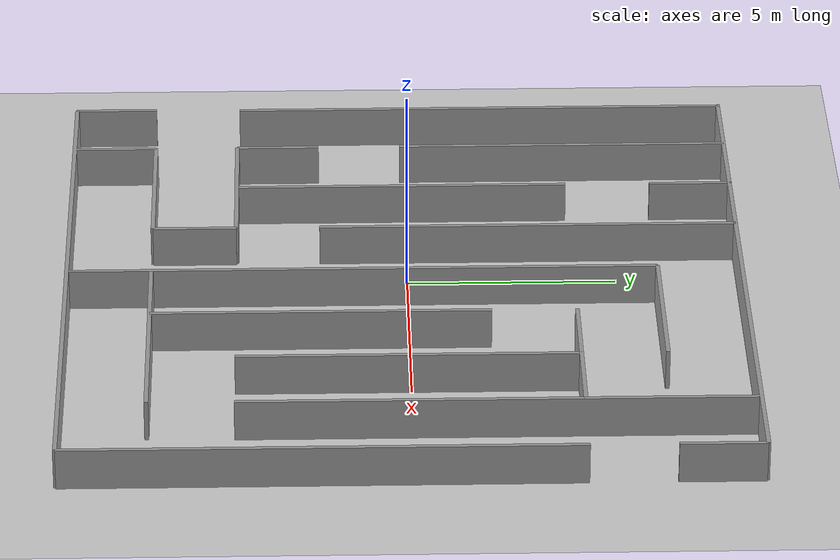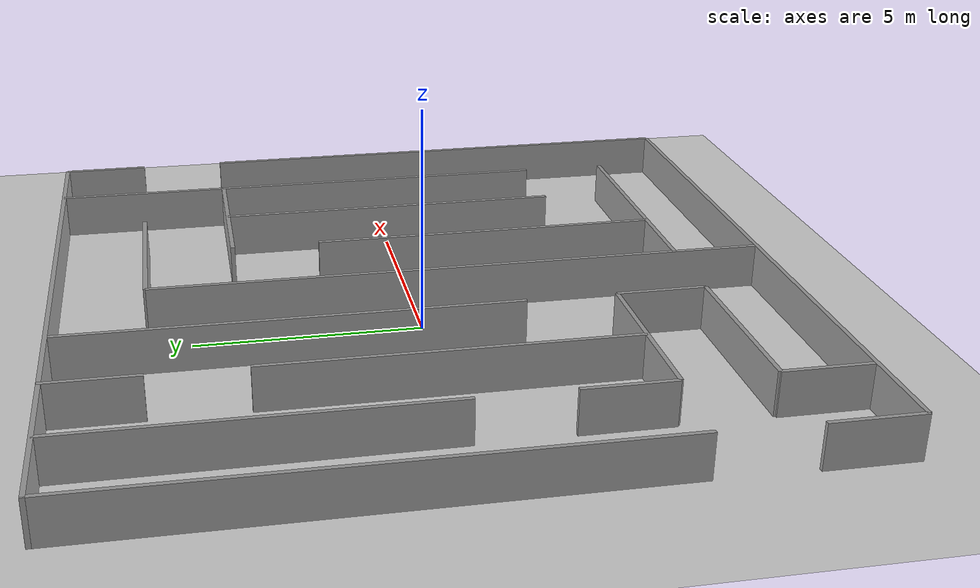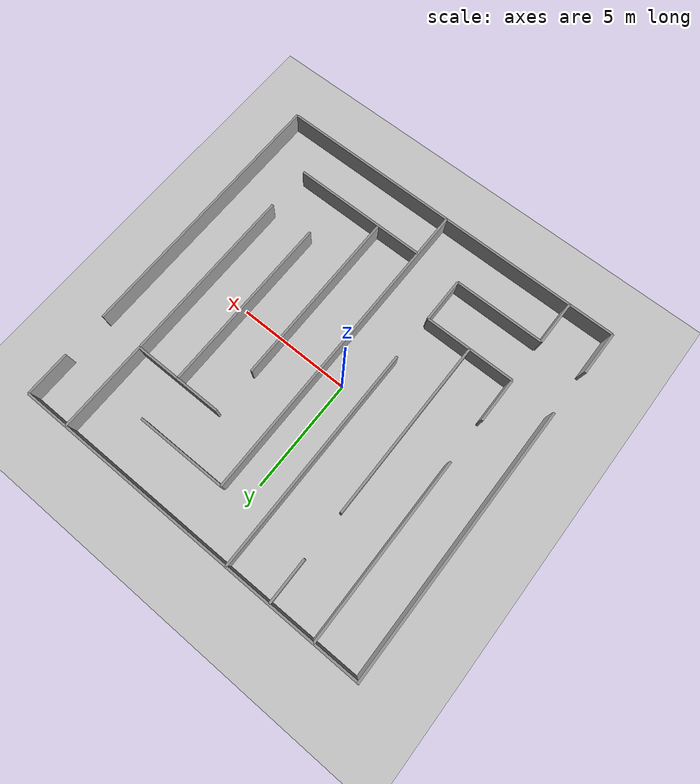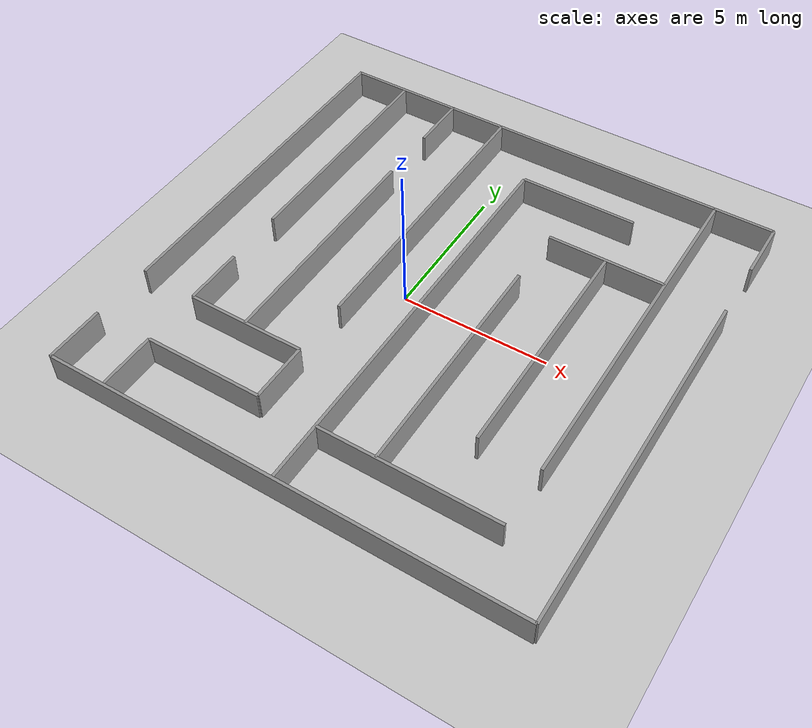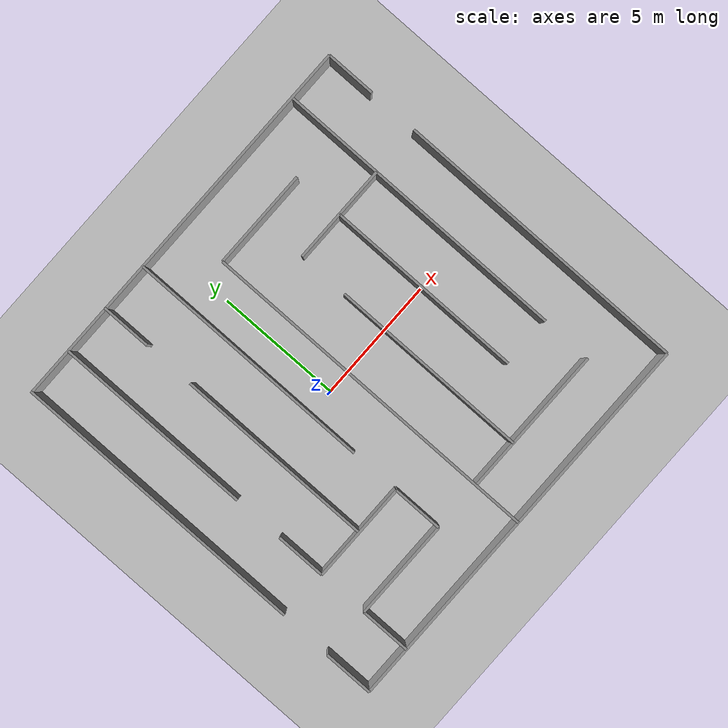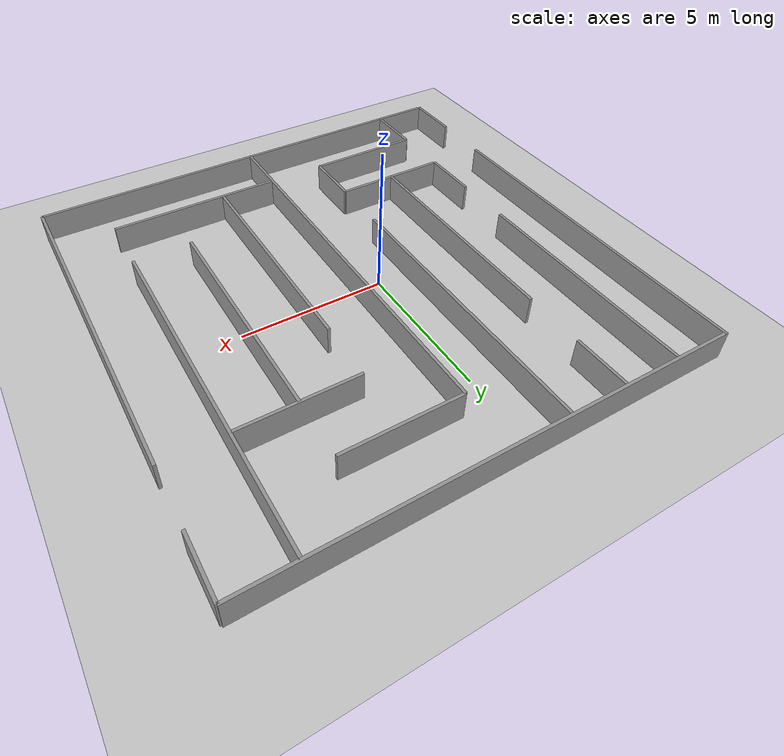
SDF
<sdf version="1.6">
 <world name="default">
  <light name="sun" type="directional">
   <pose>0 0 10 0 -0 0</pose>
   <diffuse>0.8 0.8 0.8 1</diffuse>
   <specular>0.2 0.2 0.2 1</specular>
   <attenuation>
    <range>1000</range>
    <constant>0.9</constant>
    <linear>0.01</linear>
    <quadratic>0.001</quadratic>
   </attenuation>
   <direction>-0.5 0.1 -0.9</direction>
  </light>
  <model name="ground_plane">
   <static>1</static>
   <link name="link">
    <collision name="collision">
     <geometry><plane><normal>0 0 1</normal><size>100 100</size></plane></geometry>
     <surface>
      <contact><collide_bitmask>65535</collide_bitmask></contact>
      <friction><ode><mu>100</mu><mu2>50</mu2></ode></friction>
     </surface>
    </collision>
    <visual name="visual">
     <cast_shadows>0</cast_shadows>
     <geometry><plane><normal>0 0 1</normal><size>100 100</size></plane></geometry>
     <material>
      <script><uri>file://media/materials/scripts/gazebo.material</uri><name>Gazebo/Grey</name></script>
     </material>
    </visual>
   </link>
  </model>
  <gravity>0 0 -9.8</gravity>
  <magnetic_field>6e-06 2.3e-05 -4.2e-05</magnetic_field>
  <atmosphere type="adiabatic"/>
  <physics name="default_physics" default="0" type="ode">
   <max_step_size>0.001</max_step_size>
   <real_time_factor>1</real_time_factor>
   <real_time_update_rate>1000</real_time_update_rate>
  </physics>
  <scene><ambient>0.4 0.4 0.4 1</ambient><background>0.7 0.7 0.7 1</background><shadows>1</shadows></scene>
  <audio><device>default</device></audio>
  <spherical_coordinates>
   <surface_model>EARTH_WGS84</surface_model>
   <latitude_deg>0</latitude_deg>
   <longitude_deg>0</longitude_deg>
   <elevation>0</elevation>
   <heading_deg>0</heading_deg>
  </spherical_coordinates>
  <model name="maze">
   <link name="link_0_clone">
    <inertial>
     <mass>1.62885</mass>
     <inertia><ixx>26.6013</ixx><ixy>0</ixy><ixz>0</ixz><iyy>0.137095</iyy><iyz>0</iyz><izz>26.4669</izz></inertia>
    </inertial>
    <pose>-7.17931 2.40931 0 0 -0 0</pose>
    <visual name="visual">
     <geometry><box><size>0.1 12 1</size></box></geometry>
     <material>
      <lighting>1</lighting>
      <script><uri>file://media/materials/scripts/gazebo.material</uri><name>Gazebo/Grey</name></script>
      <shader type="vertex"><normal_map>__default__</normal_map></shader>
      <ambient>0.3 0.3 0.3 1</ambient>
      <diffuse>0.7 0.7 0.7 1</diffuse>
      <specular>0.01 0.01 0.01 1</specular>
      <emissive>0 0 0 1</emissive>
     </material>
    </visual>
    <collision name="collision">
     <geometry><box><size>0.1 12 1</size></box></geometry>
     <surface>
      <friction>
       <ode><mu>1</mu><mu2>1</mu2><fdir1>0 0 0</fdir1><slip1>0</slip1><slip2>0</slip2></ode>
       <torsional>
        <coefficient>1</coefficient>
        <patch_radius>0</patch_radius>
        <surface_radius>0</surface_radius>
        <use_patch_radius>1</use_patch_radius>
        <ode><slip>0</slip></ode>
       </torsional>
      </friction>
      <bounce><restitution_coefficient>0</restitution_coefficient><threshold>1e+06</threshold></bounce>
      <contact>
       <collide_without_contact>0</collide_without_contact>
       <collide_without_contact_bitmask>1</collide_without_contact_bitmask>
       <collide_bitmask>1</collide_bitmask>
       <ode>
        <soft_cfm>0</soft_cfm>
        <soft_erp>0.2</soft_erp>
        <kp>1e+13</kp>
        <kd>1</kd>
        <max_vel>0.01</max_vel>
        <min_depth>0</min_depth>
       </ode>
       <bullet>
        <split_impulse>1</split_impulse>
        <split_impulse_penetration_threshold>-0.01</split_impulse_penetration_threshold>
        <soft_cfm>0</soft_cfm>
        <soft_erp>0.2</soft_erp>
        <kp>1e+13</kp>
        <kd>1</kd>
       </bullet>
      </contact>
     </surface>
    </collision>
   </link>
   <link name="link_0_clone_0">
    <inertial>
     <mass>1.86643</mass>
     <inertia><ixx>38.3801</ixx><ixy>0</ixy><ixz>0</ixz><iyy>0.15774</iyy><iyz>0</iyz><izz>38.2268</izz></inertia>
    </inertial>
    <pose>0.770355 8.36034 0 0 0 -1.5708</pose>
    <visual name="visual">
     <geometry><box><size>0.1 16 1</size></box></geometry>
     <material>
      <lighting>1</lighting>
      <script><uri>file://media/materials/scripts/gazebo.material</uri><name>Gazebo/Grey</name></script>
      <shader type="vertex"><normal_map>__default__</normal_map></shader>
      <ambient>0.3 0.3 0.3 1</ambient>
      <diffuse>0.7 0.7 0.7 1</diffuse>
      <specular>0.01 0.01 0.01 1</specular>
      <emissive>0 0 0 1</emissive>
     </material>
    </visual>
    <collision name="collision">
     <geometry><box><size>0.1 16 1</size></box></geometry>
     <surface>
      <friction>
       <ode><mu>1</mu><mu2>1</mu2><fdir1>0 0 0</fdir1><slip1>0</slip1><slip2>0</slip2></ode>
       <torsional>
        <coefficient>1</coefficient>
        <patch_radius>0</patch_radius>
        <surface_radius>0</surface_radius>
        <use_patch_radius>1</use_patch_radius>
        <ode><slip>0</slip></ode>
       </torsional>
      </friction>
      <bounce><restitution_coefficient>0</restitution_coefficient><threshold>1e+06</threshold></bounce>
      <contact>
       <collide_without_contact>0</collide_without_contact>
       <collide_without_contact_bitmask>1</collide_without_contact_bitmask>
       <collide_bitmask>1</collide_bitmask>
       <ode>
        <soft_cfm>0</soft_cfm>
        <soft_erp>0.2</soft_erp>
        <kp>1e+13</kp>
        <kd>1</kd>
        <max_vel>0.01</max_vel>
        <min_depth>0</min_depth>
       </ode>
       <bullet>
        <split_impulse>1</split_impulse>
        <split_impulse_penetration_threshold>-0.01</split_impulse_penetration_threshold>
        <soft_cfm>0</soft_cfm>
        <soft_erp>0.2</soft_erp>
        <kp>1e+13</kp>
        <kd>1</kd>
       </bullet>
      </contact>
     </surface>
    </collision>
   </link>
   <link name="link_0_clone_0_clone">
    <inertial>
     <mass>1.86643</mass>
     <inertia><ixx>38.3801</ixx><ixy>0</ixy><ixz>0</ixz><iyy>0.15774</iyy><iyz>0</iyz><izz>38.2268</izz></inertia>
    </inertial>
    <pose>0.770355 -7.63966 0 0 0 -1.5708</pose>
    <visual name="visual">
     <geometry><box><size>0.1 16 1</size></box></geometry>
     <material>
      <lighting>1</lighting>
      <script><uri>file://media/materials/scripts/gazebo.material</uri><name>Gazebo/Grey</name></script>
      <shader type="vertex"><normal_map>__default__</normal_map></shader>
      <ambient>0.3 0.3 0.3 1</ambient>
      <diffuse>0.7 0.7 0.7 1</diffuse>
      <specular>0.01 0.01 0.01 1</specular>
      <emissive>0 0 0 1</emissive>
     </material>
    </visual>
    <collision name="collision">
     <geometry><box><size>0.1 16 1</size></box></geometry>
     <surface>
      <friction>
       <ode><mu>1</mu><mu2>1</mu2><fdir1>0 0 0</fdir1><slip1>0</slip1><slip2>0</slip2></ode>
       <torsional>
        <coefficient>1</coefficient>
        <patch_radius>0</patch_radius>
        <surface_radius>0</surface_radius>
        <use_patch_radius>1</use_patch_radius>
        <ode><slip>0</slip></ode>
       </torsional>
      </friction>
      <bounce><restitution_coefficient>0</restitution_coefficient><threshold>1e+06</threshold></bounce>
      <contact>
       <collide_without_contact>0</collide_without_contact>
       <collide_without_contact_bitmask>1</collide_without_contact_bitmask>
       <collide_bitmask>1</collide_bitmask>
       <ode>
        <soft_cfm>0</soft_cfm>
        <soft_erp>0.2</soft_erp>
        <kp>1e+13</kp>
        <kd>1</kd>
        <max_vel>0.01</max_vel>
        <min_depth>0</min_depth>
       </ode>
       <bullet>
        <split_impulse>1</split_impulse>
        <split_impulse_penetration_threshold>-0.01</split_impulse_penetration_threshold>
        <soft_cfm>0</soft_cfm>
        <soft_erp>0.2</soft_erp>
        <kp>1e+13</kp>
        <kd>1</kd>
       </bullet>
      </contact>
     </surface>
    </collision>
   </link>
   <link name="link_0_clone_0_clone_clone">
    <inertial>
     <mass>0.505028</mass>
     <inertia>
      <ixx>0.830911</ixx>
      <ixy>0</ixy>
      <ixz>0</ixz>
      <iyy>0.0425065</iyy>
      <iyz>0</iyz>
      <izz>0.789246</izz>
     </inertia>
    </inertial>
    <pose>-3.22965 -5.63966 0 0 0 -1.5708</pose>
    <visual name="visual">
     <geometry><box><size>0.1 4 1</size></box></geometry>
     <material>
      <lighting>1</lighting>
      <script><uri>file://media/materials/scripts/gazebo.material</uri><name>Gazebo/Grey</name></script>
      <shader type="vertex"><normal_map>__default__</normal_map></shader>
      <ambient>0.3 0.3 0.3 1</ambient>
      <diffuse>0.7 0.7 0.7 1</diffuse>
      <specular>0.01 0.01 0.01 1</specular>
      <emissive>0 0 0 1</emissive>
     </material>
    </visual>
    <collision name="collision">
     <geometry><box><size>0.1 4 1</size></box></geometry>
     <surface>
      <friction>
       <ode><mu>1</mu><mu2>1</mu2><fdir1>0 0 0</fdir1><slip1>0</slip1><slip2>0</slip2></ode>
       <torsional>
        <coefficient>1</coefficient>
        <patch_radius>0</patch_radius>
        <surface_radius>0</surface_radius>
        <use_patch_radius>1</use_patch_radius>
        <ode><slip>0</slip></ode>
       </torsional>
      </friction>
      <bounce><restitution_coefficient>0</restitution_coefficient><threshold>1e+06</threshold></bounce>
      <contact>
       <collide_without_contact>0</collide_without_contact>
       <collide_without_contact_bitmask>1</collide_without_contact_bitmask>
       <collide_bitmask>1</collide_bitmask>
       <ode>
        <soft_cfm>0</soft_cfm>
        <soft_erp>0.2</soft_erp>
        <kp>1e+13</kp>
        <kd>1</kd>
        <max_vel>0.01</max_vel>
        <min_depth>0</min_depth>
       </ode>
       <bullet>
        <split_impulse>1</split_impulse>
        <split_impulse_penetration_threshold>-0.01</split_impulse_penetration_threshold>
        <soft_cfm>0</soft_cfm>
        <soft_erp>0.2</soft_erp>
        <kp>1e+13</kp>
        <kd>1</kd>
       </bullet>
      </contact>
     </surface>
    </collision>
   </link>
   <link name="link_0_clone_0_clone_clone_clone">
    <inertial>
     <mass>0.505028</mass>
     <inertia>
      <ixx>0.830911</ixx>
      <ixy>0</ixy>
      <ixz>0</ixz>
      <iyy>0.0425065</iyy>
      <iyz>0</iyz>
      <izz>0.789246</izz>
     </inertia>
    </inertial>
    <pose>-3.22965 -3.63966 0 0 0 -1.5708</pose>
    <visual name="visual">
     <geometry><box><size>0.1 4 1</size></box></geometry>
     <material>
      <lighting>1</lighting>
      <script><uri>file://media/materials/scripts/gazebo.material</uri><name>Gazebo/Grey</name></script>
      <shader type="vertex"><normal_map>__default__</normal_map></shader>
      <ambient>0.3 0.3 0.3 1</ambient>
      <diffuse>0.7 0.7 0.7 1</diffuse>
      <specular>0.01 0.01 0.01 1</specular>
      <emissive>0 0 0 1</emissive>
     </material>
    </visual>
    <collision name="collision">
     <geometry><box><size>0.1 4 1</size></box></geometry>
     <surface>
      <friction>
       <ode><mu>1</mu><mu2>1</mu2><fdir1>0 0 0</fdir1><slip1>0</slip1><slip2>0</slip2></ode>
       <torsional>
        <coefficient>1</coefficient>
        <patch_radius>0</patch_radius>
        <surface_radius>0</surface_radius>
        <use_patch_radius>1</use_patch_radius>
        <ode><slip>0</slip></ode>
       </torsional>
      </friction>
      <bounce><restitution_coefficient>0</restitution_coefficient><threshold>1e+06</threshold></bounce>
      <contact>
       <collide_without_contact>0</collide_without_contact>
       <collide_without_contact_bitmask>1</collide_without_contact_bitmask>
       <collide_bitmask>1</collide_bitmask>
       <ode>
        <soft_cfm>0</soft_cfm>
        <soft_erp>0.2</soft_erp>
        <kp>1e+13</kp>
        <kd>1</kd>
        <max_vel>0.01</max_vel>
        <min_depth>0</min_depth>
       </ode>
       <bullet>
        <split_impulse>1</split_impulse>
        <split_impulse_penetration_threshold>-0.01</split_impulse_penetration_threshold>
        <soft_cfm>0</soft_cfm>
        <soft_erp>0.2</soft_erp>
        <kp>1e+13</kp>
        <kd>1</kd>
       </bullet>
      </contact>
     </surface>
    </collision>
   </link>
   <link name="link_0_clone_0_clone_clone_clone_0">
    <inertial>
     <mass>0.505028</mass>
     <inertia>
      <ixx>0.830911</ixx>
      <ixy>0</ixy>
      <ixz>0</ixz>
      <iyy>0.0425065</iyy>
      <iyz>0</iyz>
      <izz>0.789246</izz>
     </inertia>
    </inertial>
    <pose>2.77035 6.36034 0 0 0 -1.5708</pose>
    <visual name="visual">
     <geometry><box><size>0.1 4 1</size></box></geometry>
     <material>
      <lighting>1</lighting>
      <script><uri>file://media/materials/scripts/gazebo.material</uri><name>Gazebo/Grey</name></script>
      <shader type="vertex"><normal_map>__default__</normal_map></shader>
      <ambient>0.3 0.3 0.3 1</ambient>
      <diffuse>0.7 0.7 0.7 1</diffuse>
      <specular>0.01 0.01 0.01 1</specular>
      <emissive>0 0 0 1</emissive>
     </material>
    </visual>
    <collision name="collision">
     <geometry><box><size>0.1 4 1</size></box></geometry>
     <surface>
      <friction>
       <ode><mu>1</mu><mu2>1</mu2><fdir1>0 0 0</fdir1><slip1>0</slip1><slip2>0</slip2></ode>
       <torsional>
        <coefficient>1</coefficient>
        <patch_radius>0</patch_radius>
        <surface_radius>0</surface_radius>
        <use_patch_radius>1</use_patch_radius>
        <ode><slip>0</slip></ode>
       </torsional>
      </friction>
      <bounce><restitution_coefficient>0</restitution_coefficient><threshold>1e+06</threshold></bounce>
      <contact>
       <collide_without_contact>0</collide_without_contact>
       <collide_without_contact_bitmask>1</collide_without_contact_bitmask>
       <collide_bitmask>1</collide_bitmask>
       <ode>
        <soft_cfm>0</soft_cfm>
        <soft_erp>0.2</soft_erp>
        <kp>1e+13</kp>
        <kd>1</kd>
        <max_vel>0.01</max_vel>
        <min_depth>0</min_depth>
       </ode>
       <bullet>
        <split_impulse>1</split_impulse>
        <split_impulse_penetration_threshold>-0.01</split_impulse_penetration_threshold>
        <soft_cfm>0</soft_cfm>
        <soft_erp>0.2</soft_erp>
        <kp>1e+13</kp>
        <kd>1</kd>
       </bullet>
      </contact>
     </surface>
    </collision>
   </link>
   <link name="link_0_clone_0_clone_clone_clone_1">
    <inertial>
     <mass>0.505028</mass>
     <inertia>
      <ixx>0.830911</ixx>
      <ixy>0</ixy>
      <ixz>0</ixz>
      <iyy>0.0425065</iyy>
      <iyz>0</iyz>
      <izz>0.789246</izz>
     </inertia>
    </inertial>
    <pose>4.77036 4.36034 0 0 0 -1.5708</pose>
    <visual name="visual">
     <geometry><box><size>0.1 4 1</size></box></geometry>
     <material>
      <lighting>1</lighting>
      <script><uri>file://media/materials/scripts/gazebo.material</uri><name>Gazebo/Grey</name></script>
      <shader type="vertex"><normal_map>__default__</normal_map></shader>
      <ambient>0.3 0.3 0.3 1</ambient>
      <diffuse>0.7 0.7 0.7 1</diffuse>
      <specular>0.01 0.01 0.01 1</specular>
      <emissive>0 0 0 1</emissive>
     </material>
    </visual>
    <collision name="collision">
     <geometry><box><size>0.1 4 1</size></box></geometry>
     <surface>
      <friction>
       <ode><mu>1</mu><mu2>1</mu2><fdir1>0 0 0</fdir1><slip1>0</slip1><slip2>0</slip2></ode>
       <torsional>
        <coefficient>1</coefficient>
        <patch_radius>0</patch_radius>
        <surface_radius>0</surface_radius>
        <use_patch_radius>1</use_patch_radius>
        <ode><slip>0</slip></ode>
       </torsional>
      </friction>
      <bounce><restitution_coefficient>0</restitution_coefficient><threshold>1e+06</threshold></bounce>
      <contact>
       <collide_without_contact>0</collide_without_contact>
       <collide_without_contact_bitmask>1</collide_without_contact_bitmask>
       <collide_bitmask>1</collide_bitmask>
       <ode>
        <soft_cfm>0</soft_cfm>
        <soft_erp>0.2</soft_erp>
        <kp>1e+13</kp>
        <kd>1</kd>
        <max_vel>0.01</max_vel>
        <min_depth>0</min_depth>
       </ode>
       <bullet>
        <split_impulse>1</split_impulse>
        <split_impulse_penetration_threshold>-0.01</split_impulse_penetration_threshold>
        <soft_cfm>0</soft_cfm>
        <soft_erp>0.2</soft_erp>
        <kp>1e+13</kp>
        <kd>1</kd>
       </bullet>
      </contact>
     </surface>
    </collision>
   </link>
   <link name="link_0_clone_0_clone_clone_clone_2">
    <inertial>
     <mass>0.505028</mass>
     <inertia>
      <ixx>0.830911</ixx>
      <ixy>0</ixy>
      <ixz>0</ixz>
      <iyy>0.0425065</iyy>
      <iyz>0</iyz>
      <izz>0.789246</izz>
     </inertia>
    </inertial>
    <pose>3.77035 -5.63966 0 0 0 -1.5708</pose>
    <visual name="visual">
     <geometry><box><size>0.1 6 1</size></box></geometry>
     <material>
      <lighting>1</lighting>
      <script><uri>file://media/materials/scripts/gazebo.material</uri><name>Gazebo/Grey</name></script>
      <shader type="vertex"><normal_map>__default__</normal_map></shader>
      <ambient>0.3 0.3 0.3 1</ambient>
      <diffuse>0.7 0.7 0.7 1</diffuse>
      <specular>0.01 0.01 0.01 1</specular>
      <emissive>0 0 0 1</emissive>
     </material>
    </visual>
    <collision name="collision">
     <geometry><box><size>0.1 6 1</size></box></geometry>
     <surface>
      <friction>
       <ode><mu>1</mu><mu2>1</mu2><fdir1>0 0 0</fdir1><slip1>0</slip1><slip2>0</slip2></ode>
       <torsional>
        <coefficient>1</coefficient>
        <patch_radius>0</patch_radius>
        <surface_radius>0</surface_radius>
        <use_patch_radius>1</use_patch_radius>
        <ode><slip>0</slip></ode>
       </torsional>
      </friction>
      <bounce><restitution_coefficient>0</restitution_coefficient><threshold>1e+06</threshold></bounce>
      <contact>
       <collide_without_contact>0</collide_without_contact>
       <collide_without_contact_bitmask>1</collide_without_contact_bitmask>
       <collide_bitmask>1</collide_bitmask>
       <ode>
        <soft_cfm>0</soft_cfm>
        <soft_erp>0.2</soft_erp>
        <kp>1e+13</kp>
        <kd>1</kd>
        <max_vel>0.01</max_vel>
        <min_depth>0</min_depth>
       </ode>
       <bullet>
        <split_impulse>1</split_impulse>
        <split_impulse_penetration_threshold>-0.01</split_impulse_penetration_threshold>
        <soft_cfm>0</soft_cfm>
        <soft_erp>0.2</soft_erp>
        <kp>1e+13</kp>
        <kd>1</kd>
       </bullet>
      </contact>
     </surface>
    </collision>
   </link>
   <link name="link_0_clone_clone">
    <inertial>
     <mass>1.62885</mass>
     <inertia><ixx>26.6013</ixx><ixy>0</ixy><ixz>0</ixz><iyy>0.137095</iyy><iyz>0</iyz><izz>26.4669</izz></inertia>
    </inertial>
    <pose>8.77036 -1.63966 0 0 -0 0</pose>
    <visual name="visual">
     <geometry><box><size>0.1 12 1</size></box></geometry>
     <material>
      <lighting>1</lighting>
      <script><uri>file://media/materials/scripts/gazebo.material</uri><name>Gazebo/Grey</name></script>
      <shader type="vertex"><normal_map>__default__</normal_map></shader>
      <ambient>0.3 0.3 0.3 1</ambient>
      <diffuse>0.7 0.7 0.7 1</diffuse>
      <specular>0.01 0.01 0.01 1</specular>
      <emissive>0 0 0 1</emissive>
     </material>
    </visual>
    <collision name="collision">
     <geometry><box><size>0.1 12 1</size></box></geometry>
     <surface>
      <friction>
       <ode><mu>1</mu><mu2>1</mu2><fdir1>0 0 0</fdir1><slip1>0</slip1><slip2>0</slip2></ode>
       <torsional>
        <coefficient>1</coefficient>
        <patch_radius>0</patch_radius>
        <surface_radius>0</surface_radius>
        <use_patch_radius>1</use_patch_radius>
        <ode><slip>0</slip></ode>
       </torsional>
      </friction>
      <bounce><restitution_coefficient>0</restitution_coefficient><threshold>1e+06</threshold></bounce>
      <contact>
       <collide_without_contact>0</collide_without_contact>
       <collide_without_contact_bitmask>1</collide_without_contact_bitmask>
       <collide_bitmask>1</collide_bitmask>
       <ode>
        <soft_cfm>0</soft_cfm>
        <soft_erp>0.2</soft_erp>
        <kp>1e+13</kp>
        <kd>1</kd>
        <max_vel>0.01</max_vel>
        <min_depth>0</min_depth>
       </ode>
       <bullet>
        <split_impulse>1</split_impulse>
        <split_impulse_penetration_threshold>-0.01</split_impulse_penetration_threshold>
        <soft_cfm>0</soft_cfm>
        <soft_erp>0.2</soft_erp>
        <kp>1e+13</kp>
        <kd>1</kd>
       </bullet>
      </contact>
     </surface>
    </collision>
   </link>
   <link name="link_0_clone_clone_0">
    <inertial>
     <mass>1.62885</mass>
     <inertia><ixx>26.6013</ixx><ixy>0</ixy><ixz>0</ixz><iyy>0.137095</iyy><iyz>0</iyz><izz>26.4669</izz></inertia>
    </inertial>
    <pose>-7.23116 -6.65918 0 0 -0 0</pose>
    <visual name="visual">
     <geometry><box><size>0.1 2 1</size></box></geometry>
     <material>
      <lighting>1</lighting>
      <script><uri>file://media/materials/scripts/gazebo.material</uri><name>Gazebo/Grey</name></script>
      <shader type="vertex"><normal_map>__default__</normal_map></shader>
      <ambient>0.3 0.3 0.3 1</ambient>
      <diffuse>0.7 0.7 0.7 1</diffuse>
      <specular>0.01 0.01 0.01 1</specular>
      <emissive>0 0 0 1</emissive>
     </material>
    </visual>
    <collision name="collision">
     <geometry><box><size>0.1 2 1</size></box></geometry>
     <surface>
      <friction>
       <ode><mu>1</mu><mu2>1</mu2><fdir1>0 0 0</fdir1><slip1>0</slip1><slip2>0</slip2></ode>
       <torsional>
        <coefficient>1</coefficient>
        <patch_radius>0</patch_radius>
        <surface_radius>0</surface_radius>
        <use_patch_radius>1</use_patch_radius>
        <ode><slip>0</slip></ode>
       </torsional>
      </friction>
      <bounce><restitution_coefficient>0</restitution_coefficient><threshold>1e+06</threshold></bounce>
      <contact>
       <collide_without_contact>0</collide_without_contact>
       <collide_without_contact_bitmask>1</collide_without_contact_bitmask>
       <collide_bitmask>1</collide_bitmask>
       <ode>
        <soft_cfm>0</soft_cfm>
        <soft_erp>0.2</soft_erp>
        <kp>1e+13</kp>
        <kd>1</kd>
        <max_vel>0.01</max_vel>
        <min_depth>0</min_depth>
       </ode>
       <bullet>
        <split_impulse>1</split_impulse>
        <split_impulse_penetration_threshold>-0.01</split_impulse_penetration_threshold>
        <soft_cfm>0</soft_cfm>
        <soft_erp>0.2</soft_erp>
        <kp>1e+13</kp>
        <kd>1</kd>
       </bullet>
      </contact>
     </surface>
    </collision>
   </link>
   <link name="link_0_clone_clone_0_clone">
    <inertial>
     <mass>1.62885</mass>
     <inertia><ixx>26.6013</ixx><ixy>0</ixy><ixz>0</ixz><iyy>0.137095</iyy><iyz>0</iyz><izz>26.4669</izz></inertia>
    </inertial>
    <pose>8.77036 7.36034 0 0 -0 0</pose>
    <visual name="visual">
     <geometry><box><size>0.1 2 1</size></box></geometry>
     <material>
      <lighting>1</lighting>
      <script><uri>file://media/materials/scripts/gazebo.material</uri><name>Gazebo/Grey</name></script>
      <shader type="vertex"><normal_map>__default__</normal_map></shader>
      <ambient>0.3 0.3 0.3 1</ambient>
      <diffuse>0.7 0.7 0.7 1</diffuse>
      <specular>0.01 0.01 0.01 1</specular>
      <emissive>0 0 0 1</emissive>
     </material>
    </visual>
    <collision name="collision">
     <geometry><box><size>0.1 2 1</size></box></geometry>
     <surface>
      <friction>
       <ode><mu>1</mu><mu2>1</mu2><fdir1>0 0 0</fdir1><slip1>0</slip1><slip2>0</slip2></ode>
       <torsional>
        <coefficient>1</coefficient>
        <patch_radius>0</patch_radius>
        <surface_radius>0</surface_radius>
        <use_patch_radius>1</use_patch_radius>
        <ode><slip>0</slip></ode>
       </torsional>
      </friction>
      <bounce><restitution_coefficient>0</restitution_coefficient><threshold>1e+06</threshold></bounce>
      <contact>
       <collide_without_contact>0</collide_without_contact>
       <collide_without_contact_bitmask>1</collide_without_contact_bitmask>
       <collide_bitmask>1</collide_bitmask>
       <ode>
        <soft_cfm>0</soft_cfm>
        <soft_erp>0.2</soft_erp>
        <kp>1e+13</kp>
        <kd>1</kd>
        <max_vel>0.01</max_vel>
        <min_depth>0</min_depth>
       </ode>
       <bullet>
        <split_impulse>1</split_impulse>
        <split_impulse_penetration_threshold>-0.01</split_impulse_penetration_threshold>
        <soft_cfm>0</soft_cfm>
        <soft_erp>0.2</soft_erp>
        <kp>1e+13</kp>
        <kd>1</kd>
       </bullet>
      </contact>
     </surface>
    </collision>
   </link>
   <link name="link_0_clone_clone_0_clone_0">
    <inertial>
     <mass>1.62885</mass>
     <inertia><ixx>26.6013</ixx><ixy>0</ixy><ixz>0</ixz><iyy>0.137095</iyy><iyz>0</iyz><izz>26.4669</izz></inertia>
    </inertial>
    <pose>-5.22964 -2.63966 0 0 -0 0</pose>
    <visual name="visual">
     <geometry><box><size>0.1 2 1</size></box></geometry>
     <material>
      <lighting>1</lighting>
      <script><uri>file://media/materials/scripts/gazebo.material</uri><name>Gazebo/Grey</name></script>
      <shader type="vertex"><normal_map>__default__</normal_map></shader>
      <ambient>0.3 0.3 0.3 1</ambient>
      <diffuse>0.7 0.7 0.7 1</diffuse>
      <specular>0.01 0.01 0.01 1</specular>
      <emissive>0 0 0 1</emissive>
     </material>
    </visual>
    <collision name="collision">
     <geometry><box><size>0.1 2 1</size></box></geometry>
     <surface>
      <friction>
       <ode><mu>1</mu><mu2>1</mu2><fdir1>0 0 0</fdir1><slip1>0</slip1><slip2>0</slip2></ode>
       <torsional>
        <coefficient>1</coefficient>
        <patch_radius>0</patch_radius>
        <surface_radius>0</surface_radius>
        <use_patch_radius>1</use_patch_radius>
        <ode><slip>0</slip></ode>
       </torsional>
      </friction>
      <bounce><restitution_coefficient>0</restitution_coefficient><threshold>1e+06</threshold></bounce>
      <contact>
       <collide_without_contact>0</collide_without_contact>
       <collide_without_contact_bitmask>1</collide_without_contact_bitmask>
       <collide_bitmask>1</collide_bitmask>
       <ode>
        <soft_cfm>0</soft_cfm>
        <soft_erp>0.2</soft_erp>
        <kp>1e+13</kp>
        <kd>1</kd>
        <max_vel>0.01</max_vel>
        <min_depth>0</min_depth>
       </ode>
       <bullet>
        <split_impulse>1</split_impulse>
        <split_impulse_penetration_threshold>-0.01</split_impulse_penetration_threshold>
        <soft_cfm>0</soft_cfm>
        <soft_erp>0.2</soft_erp>
        <kp>1e+13</kp>
        <kd>1</kd>
       </bullet>
      </contact>
     </surface>
    </collision>
   </link>
   <link name="link_0_clone_clone_0_clone_0_clone">
    <inertial>
     <mass>1.62885</mass>
     <inertia><ixx>26.6013</ixx><ixy>0</ixy><ixz>0</ixz><iyy>0.137095</iyy><iyz>0</iyz><izz>26.4669</izz></inertia>
    </inertial>
    <pose>-3.22626 7.40339 0 0 -0 0</pose>
    <visual name="visual">
     <geometry><box><size>0.1 2 1</size></box></geometry>
     <material>
      <lighting>1</lighting>
      <script><uri>file://media/materials/scripts/gazebo.material</uri><name>Gazebo/Grey</name></script>
      <shader type="vertex"><normal_map>__default__</normal_map></shader>
      <ambient>0.3 0.3 0.3 1</ambient>
      <diffuse>0.7 0.7 0.7 1</diffuse>
      <specular>0.01 0.01 0.01 1</specular>
      <emissive>0 0 0 1</emissive>
     </material>
    </visual>
    <collision name="collision">
     <geometry><box><size>0.1 2 1</size></box></geometry>
     <surface>
      <friction>
       <ode><mu>1</mu><mu2>1</mu2><fdir1>0 0 0</fdir1><slip1>0</slip1><slip2>0</slip2></ode>
       <torsional>
        <coefficient>1</coefficient>
        <patch_radius>0</patch_radius>
        <surface_radius>0</surface_radius>
        <use_patch_radius>1</use_patch_radius>
        <ode><slip>0</slip></ode>
       </torsional>
      </friction>
      <bounce><restitution_coefficient>0</restitution_coefficient><threshold>1e+06</threshold></bounce>
      <contact>
       <collide_without_contact>0</collide_without_contact>
       <collide_without_contact_bitmask>1</collide_without_contact_bitmask>
       <collide_bitmask>1</collide_bitmask>
       <ode>
        <soft_cfm>0</soft_cfm>
        <soft_erp>0.2</soft_erp>
        <kp>1e+13</kp>
        <kd>1</kd>
        <max_vel>0.01</max_vel>
        <min_depth>0</min_depth>
       </ode>
       <bullet>
        <split_impulse>1</split_impulse>
        <split_impulse_penetration_threshold>-0.01</split_impulse_penetration_threshold>
        <soft_cfm>0</soft_cfm>
        <soft_erp>0.2</soft_erp>
        <kp>1e+13</kp>
        <kd>1</kd>
       </bullet>
      </contact>
     </surface>
    </collision>
   </link>
   <link name="link_0_clone_clone_0_clone_1">
    <inertial>
     <mass>1.62885</mass>
     <inertia><ixx>26.6013</ixx><ixy>0</ixy><ixz>0</ixz><iyy>0.137095</iyy><iyz>0</iyz><izz>26.4669</izz></inertia>
    </inertial>
    <pose>-1.22965 -4.63966 0 0 -0 0</pose>
    <visual name="visual">
     <geometry><box><size>0.1 2 1</size></box></geometry>
     <material>
      <lighting>1</lighting>
      <script><uri>file://media/materials/scripts/gazebo.material</uri><name>Gazebo/Grey</name></script>
      <shader type="vertex"><normal_map>__default__</normal_map></shader>
      <ambient>0.3 0.3 0.3 1</ambient>
      <diffuse>0.7 0.7 0.7 1</diffuse>
      <specular>0.01 0.01 0.01 1</specular>
      <emissive>0 0 0 1</emissive>
     </material>
    </visual>
    <collision name="collision">
     <geometry><box><size>0.1 2 1</size></box></geometry>
     <surface>
      <friction>
       <ode><mu>1</mu><mu2>1</mu2><fdir1>0 0 0</fdir1><slip1>0</slip1><slip2>0</slip2></ode>
       <torsional>
        <coefficient>1</coefficient>
        <patch_radius>0</patch_radius>
        <surface_radius>0</surface_radius>
        <use_patch_radius>1</use_patch_radius>
        <ode><slip>0</slip></ode>
       </torsional>
      </friction>
      <bounce><restitution_coefficient>0</restitution_coefficient><threshold>1e+06</threshold></bounce>
      <contact>
       <collide_without_contact>0</collide_without_contact>
       <collide_without_contact_bitmask>1</collide_without_contact_bitmask>
       <collide_bitmask>1</collide_bitmask>
       <ode>
        <soft_cfm>0</soft_cfm>
        <soft_erp>0.2</soft_erp>
        <kp>1e+13</kp>
        <kd>1</kd>
        <max_vel>0.01</max_vel>
        <min_depth>0</min_depth>
       </ode>
       <bullet>
        <split_impulse>1</split_impulse>
        <split_impulse_penetration_threshold>-0.01</split_impulse_penetration_threshold>
        <soft_cfm>0</soft_cfm>
        <soft_erp>0.2</soft_erp>
        <kp>1e+13</kp>
        <kd>1</kd>
       </bullet>
      </contact>
     </surface>
    </collision>
   </link>
   <link name="link_0_clone_clone_0_clone_1_clone">
    <inertial>
     <mass>1.62885</mass>
     <inertia><ixx>26.6013</ixx><ixy>0</ixy><ixz>0</ixz><iyy>0.137095</iyy><iyz>0</iyz><izz>26.4669</izz></inertia>
    </inertial>
    <pose>-5.22964 -6.63966 0 0 -0 0</pose>
    <visual name="visual">
     <geometry><box><size>0.1 2 1</size></box></geometry>
     <material>
      <lighting>1</lighting>
      <script><uri>file://media/materials/scripts/gazebo.material</uri><name>Gazebo/Grey</name></script>
      <shader type="vertex"><normal_map>__default__</normal_map></shader>
      <ambient>0.3 0.3 0.3 1</ambient>
      <diffuse>0.7 0.7 0.7 1</diffuse>
      <specular>0.01 0.01 0.01 1</specular>
      <emissive>0 0 0 1</emissive>
     </material>
    </visual>
    <collision name="collision">
     <geometry><box><size>0.1 2 1</size></box></geometry>
     <surface>
      <friction>
       <ode><mu>1</mu><mu2>1</mu2><fdir1>0 0 0</fdir1><slip1>0</slip1><slip2>0</slip2></ode>
       <torsional>
        <coefficient>1</coefficient>
        <patch_radius>0</patch_radius>
        <surface_radius>0</surface_radius>
        <use_patch_radius>1</use_patch_radius>
        <ode><slip>0</slip></ode>
       </torsional>
      </friction>
      <bounce><restitution_coefficient>0</restitution_coefficient><threshold>1e+06</threshold></bounce>
      <contact>
       <collide_without_contact>0</collide_without_contact>
       <collide_without_contact_bitmask>1</collide_without_contact_bitmask>
       <collide_bitmask>1</collide_bitmask>
       <ode>
        <soft_cfm>0</soft_cfm>
        <soft_erp>0.2</soft_erp>
        <kp>1e+13</kp>
        <kd>1</kd>
        <max_vel>0.01</max_vel>
        <min_depth>0</min_depth>
       </ode>
       <bullet>
        <split_impulse>1</split_impulse>
        <split_impulse_penetration_threshold>-0.01</split_impulse_penetration_threshold>
        <soft_cfm>0</soft_cfm>
        <soft_erp>0.2</soft_erp>
        <kp>1e+13</kp>
        <kd>1</kd>
       </bullet>
      </contact>
     </surface>
    </collision>
   </link>
   <link name="link_0_clone_clone_1">
    <inertial>
     <mass>1.62885</mass>
     <inertia><ixx>26.6013</ixx><ixy>0</ixy><ixz>0</ixz><iyy>0.137095</iyy><iyz>0</iyz><izz>26.4669</izz></inertia>
    </inertial>
    <pose>-5.22964 4.36034 0 0 -0 0</pose>
    <visual name="visual">
     <geometry><box><size>0.1 8 1</size></box></geometry>
     <material>
      <lighting>1</lighting>
      <script><uri>file://media/materials/scripts/gazebo.material</uri><name>Gazebo/Grey</name></script>
      <shader type="vertex"><normal_map>__default__</normal_map></shader>
      <ambient>0.3 0.3 0.3 1</ambient>
      <diffuse>0.7 0.7 0.7 1</diffuse>
      <specular>0.01 0.01 0.01 1</specular>
      <emissive>0 0 0 1</emissive>
     </material>
    </visual>
    <collision name="collision">
     <geometry><box><size>0.1 8 1</size></box></geometry>
     <surface>
      <friction>
       <ode><mu>1</mu><mu2>1</mu2><fdir1>0 0 0</fdir1><slip1>0</slip1><slip2>0</slip2></ode>
       <torsional>
        <coefficient>1</coefficient>
        <patch_radius>0</patch_radius>
        <surface_radius>0</surface_radius>
        <use_patch_radius>1</use_patch_radius>
        <ode><slip>0</slip></ode>
       </torsional>
      </friction>
      <bounce><restitution_coefficient>0</restitution_coefficient><threshold>1e+06</threshold></bounce>
      <contact>
       <collide_without_contact>0</collide_without_contact>
       <collide_without_contact_bitmask>1</collide_without_contact_bitmask>
       <collide_bitmask>1</collide_bitmask>
       <ode>
        <soft_cfm>0</soft_cfm>
        <soft_erp>0.2</soft_erp>
        <kp>1e+13</kp>
        <kd>1</kd>
        <max_vel>0.01</max_vel>
        <min_depth>0</min_depth>
       </ode>
       <bullet>
        <split_impulse>1</split_impulse>
        <split_impulse_penetration_threshold>-0.01</split_impulse_penetration_threshold>
        <soft_cfm>0</soft_cfm>
        <soft_erp>0.2</soft_erp>
        <kp>1e+13</kp>
        <kd>1</kd>
       </bullet>
      </contact>
     </surface>
    </collision>
   </link>
   <link name="link_0_clone_clone_1_clone">
    <inertial>
     <mass>1.62885</mass>
     <inertia><ixx>26.6013</ixx><ixy>0</ixy><ixz>0</ixz><iyy>0.137095</iyy><iyz>0</iyz><izz>26.4669</izz></inertia>
    </inertial>
    <pose>-3.22965 0.360341 0 0 -0 0</pose>
    <visual name="visual">
     <geometry><box><size>0.1 8 1</size></box></geometry>
     <material>
      <lighting>1</lighting>
      <script><uri>file://media/materials/scripts/gazebo.material</uri><name>Gazebo/Grey</name></script>
      <shader type="vertex"><normal_map>__default__</normal_map></shader>
      <ambient>0.3 0.3 0.3 1</ambient>
      <diffuse>0.7 0.7 0.7 1</diffuse>
      <specular>0.01 0.01 0.01 1</specular>
      <emissive>0 0 0 1</emissive>
     </material>
    </visual>
    <collision name="collision">
     <geometry><box><size>0.1 8 1</size></box></geometry>
     <surface>
      <friction>
       <ode><mu>1</mu><mu2>1</mu2><fdir1>0 0 0</fdir1><slip1>0</slip1><slip2>0</slip2></ode>
       <torsional>
        <coefficient>1</coefficient>
        <patch_radius>0</patch_radius>
        <surface_radius>0</surface_radius>
        <use_patch_radius>1</use_patch_radius>
        <ode><slip>0</slip></ode>
       </torsional>
      </friction>
      <bounce><restitution_coefficient>0</restitution_coefficient><threshold>1e+06</threshold></bounce>
      <contact>
       <collide_without_contact>0</collide_without_contact>
       <collide_without_contact_bitmask>1</collide_without_contact_bitmask>
       <collide_bitmask>1</collide_bitmask>
       <ode>
        <soft_cfm>0</soft_cfm>
        <soft_erp>0.2</soft_erp>
        <kp>1e+13</kp>
        <kd>1</kd>
        <max_vel>0.01</max_vel>
        <min_depth>0</min_depth>
       </ode>
       <bullet>
        <split_impulse>1</split_impulse>
        <split_impulse_penetration_threshold>-0.01</split_impulse_penetration_threshold>
        <soft_cfm>0</soft_cfm>
        <soft_erp>0.2</soft_erp>
        <kp>1e+13</kp>
        <kd>1</kd>
       </bullet>
      </contact>
     </surface>
    </collision>
   </link>
   <link name="link_0_clone_clone_1_clone_clone">
    <inertial>
     <mass>1.62885</mass>
     <inertia><ixx>26.6013</ixx><ixy>0</ixy><ixz>0</ixz><iyy>0.137095</iyy><iyz>0</iyz><izz>26.4669</izz></inertia>
    </inertial>
    <pose>-1.22965 3.36034 0 0 -0 0</pose>
    <visual name="visual">
     <geometry><box><size>0.1 10 1</size></box></geometry>
     <material>
      <lighting>1</lighting>
      <script><uri>file://media/materials/scripts/gazebo.material</uri><name>Gazebo/Grey</name></script>
      <shader type="vertex"><normal_map>__default__</normal_map></shader>
      <ambient>0.3 0.3 0.3 1</ambient>
      <diffuse>0.7 0.7 0.7 1</diffuse>
      <specular>0.01 0.01 0.01 1</specular>
      <emissive>0 0 0 1</emissive>
     </material>
    </visual>
    <collision name="collision">
     <geometry><box><size>0.1 10 1</size></box></geometry>
     <surface>
      <friction>
       <ode><mu>1</mu><mu2>1</mu2><fdir1>0 0 0</fdir1><slip1>0</slip1><slip2>0</slip2></ode>
       <torsional>
        <coefficient>1</coefficient>
        <patch_radius>0</patch_radius>
        <surface_radius>0</surface_radius>
        <use_patch_radius>1</use_patch_radius>
        <ode><slip>0</slip></ode>
       </torsional>
      </friction>
      <bounce><restitution_coefficient>0</restitution_coefficient><threshold>1e+06</threshold></bounce>
      <contact>
       <collide_without_contact>0</collide_without_contact>
       <collide_without_contact_bitmask>1</collide_without_contact_bitmask>
       <collide_bitmask>1</collide_bitmask>
       <ode>
        <soft_cfm>0</soft_cfm>
        <soft_erp>0.2</soft_erp>
        <kp>1e+13</kp>
        <kd>1</kd>
        <max_vel>0.01</max_vel>
        <min_depth>0</min_depth>
       </ode>
       <bullet>
        <split_impulse>1</split_impulse>
        <split_impulse_penetration_threshold>-0.01</split_impulse_penetration_threshold>
        <soft_cfm>0</soft_cfm>
        <soft_erp>0.2</soft_erp>
        <kp>1e+13</kp>
        <kd>1</kd>
       </bullet>
      </contact>
     </surface>
    </collision>
   </link>
   <link name="link_0_clone_clone_1_clone_clone_0">
    <inertial>
     <mass>1.62885</mass>
     <inertia><ixx>26.6013</ixx><ixy>0</ixy><ixz>0</ixz><iyy>0.137095</iyy><iyz>0</iyz><izz>26.4669</izz></inertia>
    </inertial>
    <pose>2.77035 -1.63966 0 0 -0 0</pose>
    <visual name="visual">
     <geometry><box><size>0.1 8 1</size></box></geometry>
     <material>
      <lighting>1</lighting>
      <script><uri>file://media/materials/scripts/gazebo.material</uri><name>Gazebo/Grey</name></script>
      <shader type="vertex"><normal_map>__default__</normal_map></shader>
      <ambient>0.3 0.3 0.3 1</ambient>
      <diffuse>0.7 0.7 0.7 1</diffuse>
      <specular>0.01 0.01 0.01 1</specular>
      <emissive>0 0 0 1</emissive>
     </material>
    </visual>
    <collision name="collision">
     <geometry><box><size>0.1 8 1</size></box></geometry>
     <surface>
      <friction>
       <ode><mu>1</mu><mu2>1</mu2><fdir1>0 0 0</fdir1><slip1>0</slip1><slip2>0</slip2></ode>
       <torsional>
        <coefficient>1</coefficient>
        <patch_radius>0</patch_radius>
        <surface_radius>0</surface_radius>
        <use_patch_radius>1</use_patch_radius>
        <ode><slip>0</slip></ode>
       </torsional>
      </friction>
      <bounce><restitution_coefficient>0</restitution_coefficient><threshold>1e+06</threshold></bounce>
      <contact>
       <collide_without_contact>0</collide_without_contact>
       <collide_without_contact_bitmask>1</collide_without_contact_bitmask>
       <collide_bitmask>1</collide_bitmask>
       <ode>
        <soft_cfm>0</soft_cfm>
        <soft_erp>0.2</soft_erp>
        <kp>1e+13</kp>
        <kd>1</kd>
        <max_vel>0.01</max_vel>
        <min_depth>0</min_depth>
       </ode>
       <bullet>
        <split_impulse>1</split_impulse>
        <split_impulse_penetration_threshold>-0.01</split_impulse_penetration_threshold>
        <soft_cfm>0</soft_cfm>
        <soft_erp>0.2</soft_erp>
        <kp>1e+13</kp>
        <kd>1</kd>
       </bullet>
      </contact>
     </surface>
    </collision>
   </link>
   <link name="link_0_clone_clone_1_clone_clone_1">
    <inertial>
     <mass>1.62885</mass>
     <inertia><ixx>26.6013</ixx><ixy>0</ixy><ixz>0</ixz><iyy>0.137095</iyy><iyz>0</iyz><izz>26.4669</izz></inertia>
    </inertial>
    <pose>4.77036 0.360341 0 0 -0 0</pose>
    <visual name="visual">
     <geometry><box><size>0.1 8 1</size></box></geometry>
     <material>
      <lighting>1</lighting>
      <script><uri>file://media/materials/scripts/gazebo.material</uri><name>Gazebo/Grey</name></script>
      <shader type="vertex"><normal_map>__default__</normal_map></shader>
      <ambient>0.3 0.3 0.3 1</ambient>
      <diffuse>0.7 0.7 0.7 1</diffuse>
      <specular>0.01 0.01 0.01 1</specular>
      <emissive>0 0 0 1</emissive>
     </material>
    </visual>
    <collision name="collision">
     <geometry><box><size>0.1 8 1</size></box></geometry>
     <surface>
      <friction>
       <ode><mu>1</mu><mu2>1</mu2><fdir1>0 0 0</fdir1><slip1>0</slip1><slip2>0</slip2></ode>
       <torsional>
        <coefficient>1</coefficient>
        <patch_radius>0</patch_radius>
        <surface_radius>0</surface_radius>
        <use_patch_radius>1</use_patch_radius>
        <ode><slip>0</slip></ode>
       </torsional>
      </friction>
      <bounce><restitution_coefficient>0</restitution_coefficient><threshold>1e+06</threshold></bounce>
      <contact>
       <collide_without_contact>0</collide_without_contact>
       <collide_without_contact_bitmask>1</collide_without_contact_bitmask>
       <collide_bitmask>1</collide_bitmask>
       <ode>
        <soft_cfm>0</soft_cfm>
        <soft_erp>0.2</soft_erp>
        <kp>1e+13</kp>
        <kd>1</kd>
        <max_vel>0.01</max_vel>
        <min_depth>0</min_depth>
       </ode>
       <bullet>
        <split_impulse>1</split_impulse>
        <split_impulse_penetration_threshold>-0.01</split_impulse_penetration_threshold>
        <soft_cfm>0</soft_cfm>
        <soft_erp>0.2</soft_erp>
        <kp>1e+13</kp>
        <kd>1</kd>
       </bullet>
      </contact>
     </surface>
    </collision>
   </link>
   <link name="link_0_clone_clone_2">
    <inertial>
     <mass>1.62885</mass>
     <inertia><ixx>26.6013</ixx><ixy>0</ixy><ixz>0</ixz><iyy>0.137095</iyy><iyz>0</iyz><izz>26.4669</izz></inertia>
    </inertial>
    <pose>6.77036 2.36034 0 0 -0 0</pose>
    <visual name="visual">
     <geometry><box><size>0.1 12 1</size></box></geometry>
     <material>
      <lighting>1</lighting>
      <script><uri>file://media/materials/scripts/gazebo.material</uri><name>Gazebo/Grey</name></script>
      <shader type="vertex"><normal_map>__default__</normal_map></shader>
      <ambient>0.3 0.3 0.3 1</ambient>
      <diffuse>0.7 0.7 0.7 1</diffuse>
      <specular>0.01 0.01 0.01 1</specular>
      <emissive>0 0 0 1</emissive>
     </material>
    </visual>
    <collision name="collision">
     <geometry><box><size>0.1 12 1</size></box></geometry>
     <surface>
      <friction>
       <ode><mu>1</mu><mu2>1</mu2><fdir1>0 0 0</fdir1><slip1>0</slip1><slip2>0</slip2></ode>
       <torsional>
        <coefficient>1</coefficient>
        <patch_radius>0</patch_radius>
        <surface_radius>0</surface_radius>
        <use_patch_radius>1</use_patch_radius>
        <ode><slip>0</slip></ode>
       </torsional>
      </friction>
      <bounce><restitution_coefficient>0</restitution_coefficient><threshold>1e+06</threshold></bounce>
      <contact>
       <collide_without_contact>0</collide_without_contact>
       <collide_without_contact_bitmask>1</collide_without_contact_bitmask>
       <collide_bitmask>1</collide_bitmask>
       <ode>
        <soft_cfm>0</soft_cfm>
        <soft_erp>0.2</soft_erp>
        <kp>1e+13</kp>
        <kd>1</kd>
        <max_vel>0.01</max_vel>
        <min_depth>0</min_depth>
       </ode>
       <bullet>
        <split_impulse>1</split_impulse>
        <split_impulse_penetration_threshold>-0.01</split_impulse_penetration_threshold>
        <soft_cfm>0</soft_cfm>
        <soft_erp>0.2</soft_erp>
        <kp>1e+13</kp>
        <kd>1</kd>
       </bullet>
      </contact>
     </surface>
    </collision>
   </link>
   <link name="link_0_clone_clone_clone">
    <inertial>
     <mass>1.92529</mass>
     <inertia><ixx>32.4387</ixx><ixy>0</ixy><ixz>0</ixz><iyy>0.162046</iyy><iyz>0</iyz><izz>32.2799</izz></inertia>
    </inertial>
    <pose>0.770355 -0.639659 0 0 -0 0</pose>
    <visual name="visual">
     <geometry><box><size>0.1 14 1</size></box></geometry>
     <material>
      <lighting>1</lighting>
      <script><uri>file://media/materials/scripts/gazebo.material</uri><name>Gazebo/Grey</name></script>
      <shader type="vertex"><normal_map>__default__</normal_map></shader>
      <ambient>0.3 0.3 0.3 1</ambient>
      <diffuse>0.7 0.7 0.7 1</diffuse>
      <specular>0.01 0.01 0.01 1</specular>
      <emissive>0 0 0 1</emissive>
     </material>
    </visual>
    <collision name="collision">
     <geometry><box><size>0.1 14 1</size></box></geometry>
     <surface>
      <friction>
       <ode><mu>1</mu><mu2>1</mu2><fdir1>0 0 0</fdir1><slip1>0</slip1><slip2>0</slip2></ode>
       <torsional>
        <coefficient>1</coefficient>
        <patch_radius>0</patch_radius>
        <surface_radius>0</surface_radius>
        <use_patch_radius>1</use_patch_radius>
        <ode><slip>0</slip></ode>
       </torsional>
      </friction>
      <bounce><restitution_coefficient>0</restitution_coefficient><threshold>1e+06</threshold></bounce>
      <contact>
       <collide_without_contact>0</collide_without_contact>
       <collide_without_contact_bitmask>1</collide_without_contact_bitmask>
       <collide_bitmask>1</collide_bitmask>
       <ode>
        <soft_cfm>0</soft_cfm>
        <soft_erp>0.2</soft_erp>
        <kp>1e+13</kp>
        <kd>1</kd>
        <max_vel>0.01</max_vel>
        <min_depth>0</min_depth>
       </ode>
       <bullet>
        <split_impulse>1</split_impulse>
        <split_impulse_penetration_threshold>-0.01</split_impulse_penetration_threshold>
        <soft_cfm>0</soft_cfm>
        <soft_erp>0.2</soft_erp>
        <kp>1e+13</kp>
        <kd>1</kd>
       </bullet>
      </contact>
     </surface>
    </collision>
   </link>
   <static>0</static>
   <pose>0.192282 -0.43522 0.496968 0 0.000425 -7e-06</pose>
  </model>
 </world>
</sdf>
